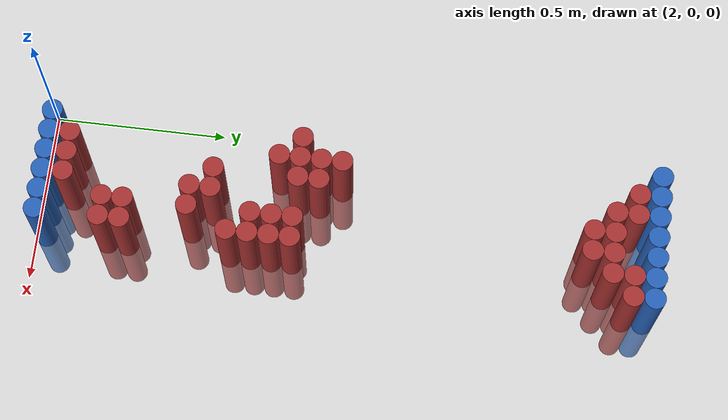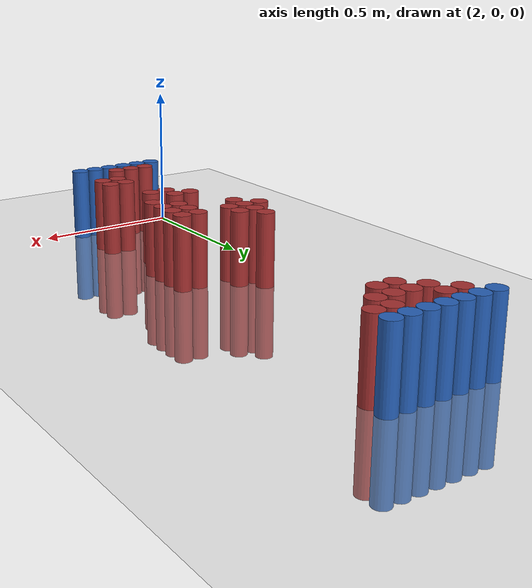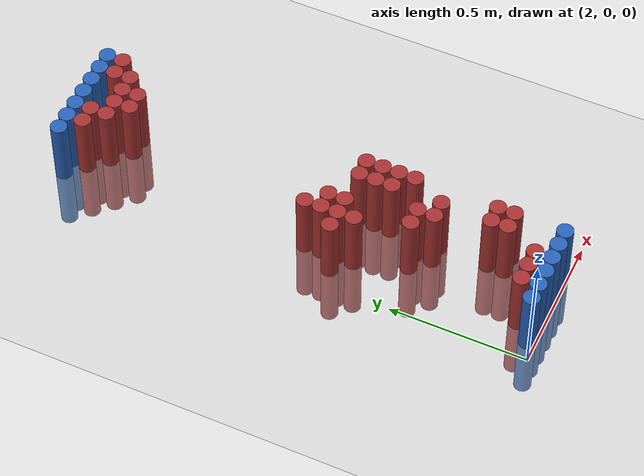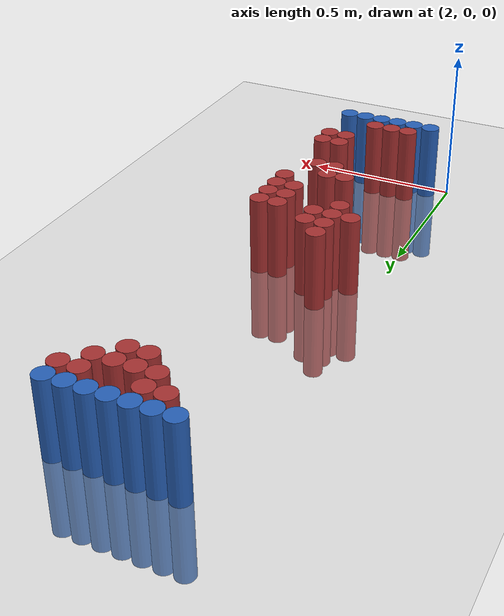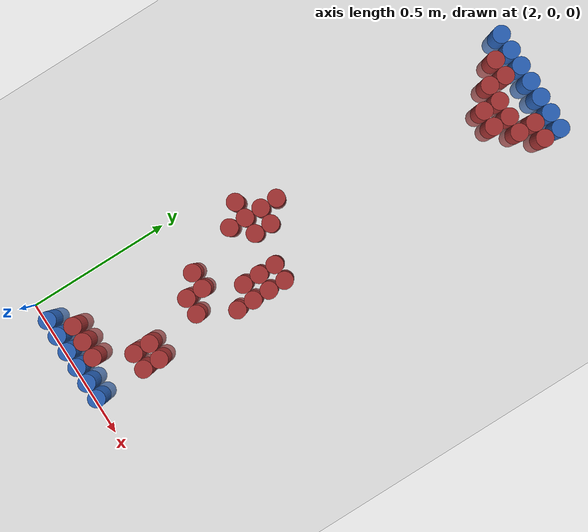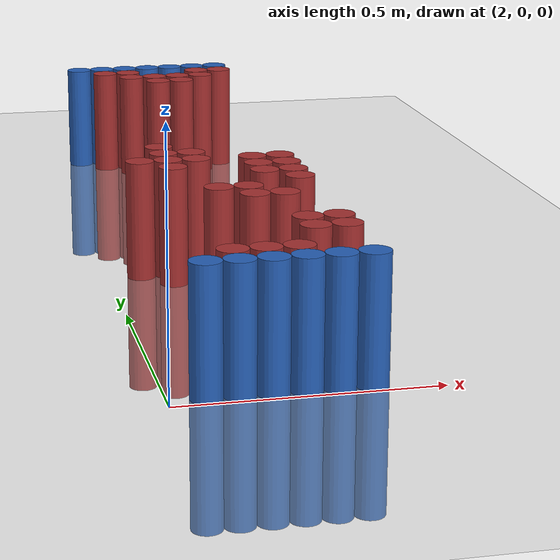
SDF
<sdf version="1.6">
 <world name="default">
  <model name="ground_plane">
   <static>1</static>
   <link name="link">
    <collision name="collision">
     <geometry><plane><normal>0 0 1</normal><size>100 100</size></plane></geometry>
     <surface><friction><ode><mu>100</mu><mu2>50</mu2></ode></friction></surface>
    </collision>
    <visual name="visual">
     <cast_shadows>0</cast_shadows>
     <geometry><plane><normal>0 0 1</normal><size>100 100</size></plane></geometry>
     <material>
      <script><uri>file://media/materials/scripts/gazebo.material</uri><name>Gazebo/Grey</name></script>
     </material>
    </visual>
   </link>
  </model>
  <model name="unit_cylinder_95">
   <static>1</static>
   <pose>2.070000 1.770000 0.000000 0.000000 0.000000 0.000000</pose>
   <link name="link">
    <inertial>
     <mass>1</mass>
     <inertia><ixx>0.145833</ixx><ixy>0</ixy><ixz>0</ixz><iyy>0.145833</iyy><iyz>0</iyz><izz>0.125</izz></inertia>
    </inertial>
    <collision name="collision">
     <geometry><cylinder><radius>0.030000</radius><length>0.5</length></cylinder></geometry>
    </collision>
    <visual name="visual">
     <geometry><cylinder><radius>0.030000</radius><length>0.5</length></cylinder></geometry>
     <material>
      <ambient>0.152000 0.379000 0.720000 1</ambient>
      <diffuse>0.152000 0.379000 0.720000 1</diffuse>
     </material>
     <material>
      <script><name>Gazebo/Grey</name><uri>file://media/materials/scripts/gazebo.material</uri></script>
     </material>
    </visual>
   </link>
  </model>
  <model name="unit_cylinder_96">
   <static>1</static>
   <pose>2.130000 1.770000 0.000000 0.000000 0.000000 0.000000</pose>
   <link name="link">
    <inertial>
     <mass>1</mass>
     <inertia><ixx>0.145833</ixx><ixy>0</ixy><ixz>0</ixz><iyy>0.145833</iyy><iyz>0</iyz><izz>0.125</izz></inertia>
    </inertial>
    <collision name="collision">
     <geometry><cylinder><radius>0.030000</radius><length>0.5</length></cylinder></geometry>
    </collision>
    <visual name="visual">
     <geometry><cylinder><radius>0.030000</radius><length>0.5</length></cylinder></geometry>
     <material>
      <ambient>0.152000 0.379000 0.720000 1</ambient>
      <diffuse>0.152000 0.379000 0.720000 1</diffuse>
     </material>
     <material>
      <script><name>Gazebo/Grey</name><uri>file://media/materials/scripts/gazebo.material</uri></script>
     </material>
    </visual>
   </link>
  </model>
  <model name="unit_cylinder_97">
   <static>1</static>
   <pose>2.190000 1.770000 0.000000 0.000000 0.000000 0.000000</pose>
   <link name="link">
    <inertial>
     <mass>1</mass>
     <inertia><ixx>0.145833</ixx><ixy>0</ixy><ixz>0</ixz><iyy>0.145833</iyy><iyz>0</iyz><izz>0.125</izz></inertia>
    </inertial>
    <collision name="collision">
     <geometry><cylinder><radius>0.030000</radius><length>0.5</length></cylinder></geometry>
    </collision>
    <visual name="visual">
     <geometry><cylinder><radius>0.030000</radius><length>0.5</length></cylinder></geometry>
     <material>
      <ambient>0.152000 0.379000 0.720000 1</ambient>
      <diffuse>0.152000 0.379000 0.720000 1</diffuse>
     </material>
     <material>
      <script><name>Gazebo/Grey</name><uri>file://media/materials/scripts/gazebo.material</uri></script>
     </material>
    </visual>
   </link>
  </model>
  <model name="unit_cylinder_98">
   <static>1</static>
   <pose>2.250000 1.770000 0.000000 0.000000 0.000000 0.000000</pose>
   <link name="link">
    <inertial>
     <mass>1</mass>
     <inertia><ixx>0.145833</ixx><ixy>0</ixy><ixz>0</ixz><iyy>0.145833</iyy><iyz>0</iyz><izz>0.125</izz></inertia>
    </inertial>
    <collision name="collision">
     <geometry><cylinder><radius>0.030000</radius><length>0.5</length></cylinder></geometry>
    </collision>
    <visual name="visual">
     <geometry><cylinder><radius>0.030000</radius><length>0.5</length></cylinder></geometry>
     <material>
      <ambient>0.152000 0.379000 0.720000 1</ambient>
      <diffuse>0.152000 0.379000 0.720000 1</diffuse>
     </material>
     <material>
      <script><name>Gazebo/Grey</name><uri>file://media/materials/scripts/gazebo.material</uri></script>
     </material>
    </visual>
   </link>
  </model>
  <model name="unit_cylinder_99">
   <static>1</static>
   <pose>2.310000 1.770000 0.000000 0.000000 0.000000 0.000000</pose>
   <link name="link">
    <inertial>
     <mass>1</mass>
     <inertia><ixx>0.145833</ixx><ixy>0</ixy><ixz>0</ixz><iyy>0.145833</iyy><iyz>0</iyz><izz>0.125</izz></inertia>
    </inertial>
    <collision name="collision">
     <geometry><cylinder><radius>0.030000</radius><length>0.5</length></cylinder></geometry>
    </collision>
    <visual name="visual">
     <geometry><cylinder><radius>0.030000</radius><length>0.5</length></cylinder></geometry>
     <material>
      <ambient>0.152000 0.379000 0.720000 1</ambient>
      <diffuse>0.152000 0.379000 0.720000 1</diffuse>
     </material>
     <material>
      <script><name>Gazebo/Grey</name><uri>file://media/materials/scripts/gazebo.material</uri></script>
     </material>
    </visual>
   </link>
  </model>
  <model name="unit_cylinder_100">
   <static>1</static>
   <pose>2.370000 1.770000 0.000000 0.000000 0.000000 0.000000</pose>
   <link name="link">
    <inertial>
     <mass>1</mass>
     <inertia><ixx>0.145833</ixx><ixy>0</ixy><ixz>0</ixz><iyy>0.145833</iyy><iyz>0</iyz><izz>0.125</izz></inertia>
    </inertial>
    <collision name="collision">
     <geometry><cylinder><radius>0.030000</radius><length>0.5</length></cylinder></geometry>
    </collision>
    <visual name="visual">
     <geometry><cylinder><radius>0.030000</radius><length>0.5</length></cylinder></geometry>
     <material>
      <ambient>0.152000 0.379000 0.720000 1</ambient>
      <diffuse>0.152000 0.379000 0.720000 1</diffuse>
     </material>
     <material>
      <script><name>Gazebo/Grey</name><uri>file://media/materials/scripts/gazebo.material</uri></script>
     </material>
    </visual>
   </link>
  </model>
  <model name="unit_cylinder_101">
   <static>1</static>
   <pose>2.430000 1.770000 0.000000 0.000000 0.000000 0.000000</pose>
   <link name="link">
    <inertial>
     <mass>1</mass>
     <inertia><ixx>0.145833</ixx><ixy>0</ixy><ixz>0</ixz><iyy>0.145833</iyy><iyz>0</iyz><izz>0.125</izz></inertia>
    </inertial>
    <collision name="collision">
     <geometry><cylinder><radius>0.030000</radius><length>0.5</length></cylinder></geometry>
    </collision>
    <visual name="visual">
     <geometry><cylinder><radius>0.030000</radius><length>0.5</length></cylinder></geometry>
     <material>
      <ambient>0.152000 0.379000 0.720000 1</ambient>
      <diffuse>0.152000 0.379000 0.720000 1</diffuse>
     </material>
     <material>
      <script><name>Gazebo/Grey</name><uri>file://media/materials/scripts/gazebo.material</uri></script>
     </material>
    </visual>
   </link>
  </model>
  <model name="unit_cylinder_125">
   <static>1</static>
   <pose>2.130000 1.710000 0.000000 0.000000 0.000000 0.000000</pose>
   <link name="link">
    <inertial>
     <mass>1</mass>
     <inertia><ixx>0.145833</ixx><ixy>0</ixy><ixz>0</ixz><iyy>0.145833</iyy><iyz>0</iyz><izz>0.125</izz></inertia>
    </inertial>
    <collision name="collision">
     <geometry><cylinder><radius>0.030000</radius><length>0.5</length></cylinder></geometry>
    </collision>
    <visual name="visual">
     <geometry><cylinder><radius>0.030000</radius><length>0.5</length></cylinder></geometry>
     <material>
      <ambient>0.648000 0.192000 0.192000 1</ambient>
      <diffuse>0.648000 0.192000 0.192000 1</diffuse>
     </material>
     <material>
      <script><name>Gazebo/Grey</name><uri>file://media/materials/scripts/gazebo.material</uri></script>
     </material>
    </visual>
   </link>
  </model>
  <model name="unit_cylinder_126">
   <static>1</static>
   <pose>2.190000 1.710000 0.000000 0.000000 0.000000 0.000000</pose>
   <link name="link">
    <inertial>
     <mass>1</mass>
     <inertia><ixx>0.145833</ixx><ixy>0</ixy><ixz>0</ixz><iyy>0.145833</iyy><iyz>0</iyz><izz>0.125</izz></inertia>
    </inertial>
    <collision name="collision">
     <geometry><cylinder><radius>0.030000</radius><length>0.5</length></cylinder></geometry>
    </collision>
    <visual name="visual">
     <geometry><cylinder><radius>0.030000</radius><length>0.5</length></cylinder></geometry>
     <material>
      <ambient>0.648000 0.192000 0.192000 1</ambient>
      <diffuse>0.648000 0.192000 0.192000 1</diffuse>
     </material>
     <material>
      <script><name>Gazebo/Grey</name><uri>file://media/materials/scripts/gazebo.material</uri></script>
     </material>
    </visual>
   </link>
  </model>
  <model name="unit_cylinder_127">
   <static>1</static>
   <pose>2.370000 1.710000 0.000000 0.000000 0.000000 0.000000</pose>
   <link name="link">
    <inertial>
     <mass>1</mass>
     <inertia><ixx>0.145833</ixx><ixy>0</ixy><ixz>0</ixz><iyy>0.145833</iyy><iyz>0</iyz><izz>0.125</izz></inertia>
    </inertial>
    <collision name="collision">
     <geometry><cylinder><radius>0.030000</radius><length>0.5</length></cylinder></geometry>
    </collision>
    <visual name="visual">
     <geometry><cylinder><radius>0.030000</radius><length>0.5</length></cylinder></geometry>
     <material>
      <ambient>0.648000 0.192000 0.192000 1</ambient>
      <diffuse>0.648000 0.192000 0.192000 1</diffuse>
     </material>
     <material>
      <script><name>Gazebo/Grey</name><uri>file://media/materials/scripts/gazebo.material</uri></script>
     </material>
    </visual>
   </link>
  </model>
  <model name="unit_cylinder_128">
   <static>1</static>
   <pose>2.430000 1.710000 0.000000 0.000000 0.000000 0.000000</pose>
   <link name="link">
    <inertial>
     <mass>1</mass>
     <inertia><ixx>0.145833</ixx><ixy>0</ixy><ixz>0</ixz><iyy>0.145833</iyy><iyz>0</iyz><izz>0.125</izz></inertia>
    </inertial>
    <collision name="collision">
     <geometry><cylinder><radius>0.030000</radius><length>0.5</length></cylinder></geometry>
    </collision>
    <visual name="visual">
     <geometry><cylinder><radius>0.030000</radius><length>0.5</length></cylinder></geometry>
     <material>
      <ambient>0.648000 0.192000 0.192000 1</ambient>
      <diffuse>0.648000 0.192000 0.192000 1</diffuse>
     </material>
     <material>
      <script><name>Gazebo/Grey</name><uri>file://media/materials/scripts/gazebo.material</uri></script>
     </material>
    </visual>
   </link>
  </model>
  <model name="unit_cylinder_139">
   <static>1</static>
   <pose>2.190000 1.650000 0.000000 0.000000 0.000000 0.000000</pose>
   <link name="link">
    <inertial>
     <mass>1</mass>
     <inertia><ixx>0.145833</ixx><ixy>0</ixy><ixz>0</ixz><iyy>0.145833</iyy><iyz>0</iyz><izz>0.125</izz></inertia>
    </inertial>
    <collision name="collision">
     <geometry><cylinder><radius>0.030000</radius><length>0.5</length></cylinder></geometry>
    </collision>
    <visual name="visual">
     <geometry><cylinder><radius>0.030000</radius><length>0.5</length></cylinder></geometry>
     <material>
      <ambient>0.648000 0.192000 0.192000 1</ambient>
      <diffuse>0.648000 0.192000 0.192000 1</diffuse>
     </material>
     <material>
      <script><name>Gazebo/Grey</name><uri>file://media/materials/scripts/gazebo.material</uri></script>
     </material>
    </visual>
   </link>
  </model>
  <model name="unit_cylinder_140">
   <static>1</static>
   <pose>2.250000 1.650000 0.000000 0.000000 0.000000 0.000000</pose>
   <link name="link">
    <inertial>
     <mass>1</mass>
     <inertia><ixx>0.145833</ixx><ixy>0</ixy><ixz>0</ixz><iyy>0.145833</iyy><iyz>0</iyz><izz>0.125</izz></inertia>
    </inertial>
    <collision name="collision">
     <geometry><cylinder><radius>0.030000</radius><length>0.5</length></cylinder></geometry>
    </collision>
    <visual name="visual">
     <geometry><cylinder><radius>0.030000</radius><length>0.5</length></cylinder></geometry>
     <material>
      <ambient>0.648000 0.192000 0.192000 1</ambient>
      <diffuse>0.648000 0.192000 0.192000 1</diffuse>
     </material>
     <material>
      <script><name>Gazebo/Grey</name><uri>file://media/materials/scripts/gazebo.material</uri></script>
     </material>
    </visual>
   </link>
  </model>
  <model name="unit_cylinder_141">
   <static>1</static>
   <pose>2.310000 1.650000 0.000000 0.000000 0.000000 0.000000</pose>
   <link name="link">
    <inertial>
     <mass>1</mass>
     <inertia><ixx>0.145833</ixx><ixy>0</ixy><ixz>0</ixz><iyy>0.145833</iyy><iyz>0</iyz><izz>0.125</izz></inertia>
    </inertial>
    <collision name="collision">
     <geometry><cylinder><radius>0.030000</radius><length>0.5</length></cylinder></geometry>
    </collision>
    <visual name="visual">
     <geometry><cylinder><radius>0.030000</radius><length>0.5</length></cylinder></geometry>
     <material>
      <ambient>0.648000 0.192000 0.192000 1</ambient>
      <diffuse>0.648000 0.192000 0.192000 1</diffuse>
     </material>
     <material>
      <script><name>Gazebo/Grey</name><uri>file://media/materials/scripts/gazebo.material</uri></script>
     </material>
    </visual>
   </link>
  </model>
  <model name="unit_cylinder_142">
   <static>1</static>
   <pose>2.370000 1.650000 0.000000 0.000000 0.000000 0.000000</pose>
   <link name="link">
    <inertial>
     <mass>1</mass>
     <inertia><ixx>0.145833</ixx><ixy>0</ixy><ixz>0</ixz><iyy>0.145833</iyy><iyz>0</iyz><izz>0.125</izz></inertia>
    </inertial>
    <collision name="collision">
     <geometry><cylinder><radius>0.030000</radius><length>0.5</length></cylinder></geometry>
    </collision>
    <visual name="visual">
     <geometry><cylinder><radius>0.030000</radius><length>0.5</length></cylinder></geometry>
     <material>
      <ambient>0.648000 0.192000 0.192000 1</ambient>
      <diffuse>0.648000 0.192000 0.192000 1</diffuse>
     </material>
     <material>
      <script><name>Gazebo/Grey</name><uri>file://media/materials/scripts/gazebo.material</uri></script>
     </material>
    </visual>
   </link>
  </model>
  <model name="unit_cylinder_156">
   <static>1</static>
   <pose>2.250000 1.590000 0.000000 0.000000 0.000000 0.000000</pose>
   <link name="link">
    <inertial>
     <mass>1</mass>
     <inertia><ixx>0.145833</ixx><ixy>0</ixy><ixz>0</ixz><iyy>0.145833</iyy><iyz>0</iyz><izz>0.125</izz></inertia>
    </inertial>
    <collision name="collision">
     <geometry><cylinder><radius>0.030000</radius><length>0.5</length></cylinder></geometry>
    </collision>
    <visual name="visual">
     <geometry><cylinder><radius>0.030000</radius><length>0.5</length></cylinder></geometry>
     <material>
      <ambient>0.648000 0.192000 0.192000 1</ambient>
      <diffuse>0.648000 0.192000 0.192000 1</diffuse>
     </material>
     <material>
      <script><name>Gazebo/Grey</name><uri>file://media/materials/scripts/gazebo.material</uri></script>
     </material>
    </visual>
   </link>
  </model>
  <model name="unit_cylinder_157">
   <static>1</static>
   <pose>2.310000 1.590000 0.000000 0.000000 0.000000 0.000000</pose>
   <link name="link">
    <inertial>
     <mass>1</mass>
     <inertia><ixx>0.145833</ixx><ixy>0</ixy><ixz>0</ixz><iyy>0.145833</iyy><iyz>0</iyz><izz>0.125</izz></inertia>
    </inertial>
    <collision name="collision">
     <geometry><cylinder><radius>0.030000</radius><length>0.5</length></cylinder></geometry>
    </collision>
    <visual name="visual">
     <geometry><cylinder><radius>0.030000</radius><length>0.5</length></cylinder></geometry>
     <material>
      <ambient>0.648000 0.192000 0.192000 1</ambient>
      <diffuse>0.648000 0.192000 0.192000 1</diffuse>
     </material>
     <material>
      <script><name>Gazebo/Grey</name><uri>file://media/materials/scripts/gazebo.material</uri></script>
     </material>
    </visual>
   </link>
  </model>
  <model name="unit_cylinder_191">
   <static>1</static>
   <pose>2.130000 0.870000 0.000000 0.000000 0.000000 0.000000</pose>
   <link name="link">
    <inertial>
     <mass>1</mass>
     <inertia><ixx>0.145833</ixx><ixy>0</ixy><ixz>0</ixz><iyy>0.145833</iyy><iyz>0</iyz><izz>0.125</izz></inertia>
    </inertial>
    <collision name="collision">
     <geometry><cylinder><radius>0.030000</radius><length>0.5</length></cylinder></geometry>
    </collision>
    <visual name="visual">
     <geometry><cylinder><radius>0.030000</radius><length>0.5</length></cylinder></geometry>
     <material>
      <ambient>0.648000 0.192000 0.192000 1</ambient>
      <diffuse>0.648000 0.192000 0.192000 1</diffuse>
     </material>
     <material>
      <script><name>Gazebo/Grey</name><uri>file://media/materials/scripts/gazebo.material</uri></script>
     </material>
    </visual>
   </link>
  </model>
  <model name="unit_cylinder_198">
   <static>1</static>
   <pose>2.130000 0.810000 0.000000 0.000000 0.000000 0.000000</pose>
   <link name="link">
    <inertial>
     <mass>1</mass>
     <inertia><ixx>0.145833</ixx><ixy>0</ixy><ixz>0</ixz><iyy>0.145833</iyy><iyz>0</iyz><izz>0.125</izz></inertia>
    </inertial>
    <collision name="collision">
     <geometry><cylinder><radius>0.030000</radius><length>0.5</length></cylinder></geometry>
    </collision>
    <visual name="visual">
     <geometry><cylinder><radius>0.030000</radius><length>0.5</length></cylinder></geometry>
     <material>
      <ambient>0.648000 0.192000 0.192000 1</ambient>
      <diffuse>0.648000 0.192000 0.192000 1</diffuse>
     </material>
     <material>
      <script><name>Gazebo/Grey</name><uri>file://media/materials/scripts/gazebo.material</uri></script>
     </material>
    </visual>
   </link>
  </model>
  <model name="unit_cylinder_199">
   <static>1</static>
   <pose>2.190000 0.810000 0.000000 0.000000 0.000000 0.000000</pose>
   <link name="link">
    <inertial>
     <mass>1</mass>
     <inertia><ixx>0.145833</ixx><ixy>0</ixy><ixz>0</ixz><iyy>0.145833</iyy><iyz>0</iyz><izz>0.125</izz></inertia>
    </inertial>
    <collision name="collision">
     <geometry><cylinder><radius>0.030000</radius><length>0.5</length></cylinder></geometry>
    </collision>
    <visual name="visual">
     <geometry><cylinder><radius>0.030000</radius><length>0.5</length></cylinder></geometry>
     <material>
      <ambient>0.648000 0.192000 0.192000 1</ambient>
      <diffuse>0.648000 0.192000 0.192000 1</diffuse>
     </material>
     <material>
      <script><name>Gazebo/Grey</name><uri>file://media/materials/scripts/gazebo.material</uri></script>
     </material>
    </visual>
   </link>
  </model>
  <model name="unit_cylinder_206">
   <static>1</static>
   <pose>2.070000 0.750000 0.000000 0.000000 0.000000 0.000000</pose>
   <link name="link">
    <inertial>
     <mass>1</mass>
     <inertia><ixx>0.145833</ixx><ixy>0</ixy><ixz>0</ixz><iyy>0.145833</iyy><iyz>0</iyz><izz>0.125</izz></inertia>
    </inertial>
    <collision name="collision">
     <geometry><cylinder><radius>0.030000</radius><length>0.5</length></cylinder></geometry>
    </collision>
    <visual name="visual">
     <geometry><cylinder><radius>0.030000</radius><length>0.5</length></cylinder></geometry>
     <material>
      <ambient>0.648000 0.192000 0.192000 1</ambient>
      <diffuse>0.648000 0.192000 0.192000 1</diffuse>
     </material>
     <material>
      <script><name>Gazebo/Grey</name><uri>file://media/materials/scripts/gazebo.material</uri></script>
     </material>
    </visual>
   </link>
  </model>
  <model name="unit_cylinder_207">
   <static>1</static>
   <pose>2.130000 0.750000 0.000000 0.000000 0.000000 0.000000</pose>
   <link name="link">
    <inertial>
     <mass>1</mass>
     <inertia><ixx>0.145833</ixx><ixy>0</ixy><ixz>0</ixz><iyy>0.145833</iyy><iyz>0</iyz><izz>0.125</izz></inertia>
    </inertial>
    <collision name="collision">
     <geometry><cylinder><radius>0.030000</radius><length>0.5</length></cylinder></geometry>
    </collision>
    <visual name="visual">
     <geometry><cylinder><radius>0.030000</radius><length>0.5</length></cylinder></geometry>
     <material>
      <ambient>0.648000 0.192000 0.192000 1</ambient>
      <diffuse>0.648000 0.192000 0.192000 1</diffuse>
     </material>
     <material>
      <script><name>Gazebo/Grey</name><uri>file://media/materials/scripts/gazebo.material</uri></script>
     </material>
    </visual>
   </link>
  </model>
  <model name="unit_cylinder_208">
   <static>1</static>
   <pose>2.190000 0.750000 0.000000 0.000000 0.000000 0.000000</pose>
   <link name="link">
    <inertial>
     <mass>1</mass>
     <inertia><ixx>0.145833</ixx><ixy>0</ixy><ixz>0</ixz><iyy>0.145833</iyy><iyz>0</iyz><izz>0.125</izz></inertia>
    </inertial>
    <collision name="collision">
     <geometry><cylinder><radius>0.030000</radius><length>0.5</length></cylinder></geometry>
    </collision>
    <visual name="visual">
     <geometry><cylinder><radius>0.030000</radius><length>0.5</length></cylinder></geometry>
     <material>
      <ambient>0.648000 0.192000 0.192000 1</ambient>
      <diffuse>0.648000 0.192000 0.192000 1</diffuse>
     </material>
     <material>
      <script><name>Gazebo/Grey</name><uri>file://media/materials/scripts/gazebo.material</uri></script>
     </material>
    </visual>
   </link>
  </model>
  <model name="unit_cylinder_209">
   <static>1</static>
   <pose>2.310000 0.750000 0.000000 0.000000 0.000000 0.000000</pose>
   <link name="link">
    <inertial>
     <mass>1</mass>
     <inertia><ixx>0.145833</ixx><ixy>0</ixy><ixz>0</ixz><iyy>0.145833</iyy><iyz>0</iyz><izz>0.125</izz></inertia>
    </inertial>
    <collision name="collision">
     <geometry><cylinder><radius>0.030000</radius><length>0.5</length></cylinder></geometry>
    </collision>
    <visual name="visual">
     <geometry><cylinder><radius>0.030000</radius><length>0.5</length></cylinder></geometry>
     <material>
      <ambient>0.648000 0.192000 0.192000 1</ambient>
      <diffuse>0.648000 0.192000 0.192000 1</diffuse>
     </material>
     <material>
      <script><name>Gazebo/Grey</name><uri>file://media/materials/scripts/gazebo.material</uri></script>
     </material>
    </visual>
   </link>
  </model>
  <model name="unit_cylinder_210">
   <static>1</static>
   <pose>2.370000 0.750000 0.000000 0.000000 0.000000 0.000000</pose>
   <link name="link">
    <inertial>
     <mass>1</mass>
     <inertia><ixx>0.145833</ixx><ixy>0</ixy><ixz>0</ixz><iyy>0.145833</iyy><iyz>0</iyz><izz>0.125</izz></inertia>
    </inertial>
    <collision name="collision">
     <geometry><cylinder><radius>0.030000</radius><length>0.5</length></cylinder></geometry>
    </collision>
    <visual name="visual">
     <geometry><cylinder><radius>0.030000</radius><length>0.5</length></cylinder></geometry>
     <material>
      <ambient>0.648000 0.192000 0.192000 1</ambient>
      <diffuse>0.648000 0.192000 0.192000 1</diffuse>
     </material>
     <material>
      <script><name>Gazebo/Grey</name><uri>file://media/materials/scripts/gazebo.material</uri></script>
     </material>
    </visual>
   </link>
  </model>
  <model name="unit_cylinder_214">
   <static>1</static>
   <pose>2.130000 0.690000 0.000000 0.000000 0.000000 0.000000</pose>
   <link name="link">
    <inertial>
     <mass>1</mass>
     <inertia><ixx>0.145833</ixx><ixy>0</ixy><ixz>0</ixz><iyy>0.145833</iyy><iyz>0</iyz><izz>0.125</izz></inertia>
    </inertial>
    <collision name="collision">
     <geometry><cylinder><radius>0.030000</radius><length>0.5</length></cylinder></geometry>
    </collision>
    <visual name="visual">
     <geometry><cylinder><radius>0.030000</radius><length>0.5</length></cylinder></geometry>
     <material>
      <ambient>0.648000 0.192000 0.192000 1</ambient>
      <diffuse>0.648000 0.192000 0.192000 1</diffuse>
     </material>
     <material>
      <script><name>Gazebo/Grey</name><uri>file://media/materials/scripts/gazebo.material</uri></script>
     </material>
    </visual>
   </link>
  </model>
  <model name="unit_cylinder_215">
   <static>1</static>
   <pose>2.310000 0.690000 0.000000 0.000000 0.000000 0.000000</pose>
   <link name="link">
    <inertial>
     <mass>1</mass>
     <inertia><ixx>0.145833</ixx><ixy>0</ixy><ixz>0</ixz><iyy>0.145833</iyy><iyz>0</iyz><izz>0.125</izz></inertia>
    </inertial>
    <collision name="collision">
     <geometry><cylinder><radius>0.030000</radius><length>0.5</length></cylinder></geometry>
    </collision>
    <visual name="visual">
     <geometry><cylinder><radius>0.030000</radius><length>0.5</length></cylinder></geometry>
     <material>
      <ambient>0.648000 0.192000 0.192000 1</ambient>
      <diffuse>0.648000 0.192000 0.192000 1</diffuse>
     </material>
     <material>
      <script><name>Gazebo/Grey</name><uri>file://media/materials/scripts/gazebo.material</uri></script>
     </material>
    </visual>
   </link>
  </model>
  <model name="unit_cylinder_216">
   <static>1</static>
   <pose>2.370000 0.690000 0.000000 0.000000 0.000000 0.000000</pose>
   <link name="link">
    <inertial>
     <mass>1</mass>
     <inertia><ixx>0.145833</ixx><ixy>0</ixy><ixz>0</ixz><iyy>0.145833</iyy><iyz>0</iyz><izz>0.125</izz></inertia>
    </inertial>
    <collision name="collision">
     <geometry><cylinder><radius>0.030000</radius><length>0.5</length></cylinder></geometry>
    </collision>
    <visual name="visual">
     <geometry><cylinder><radius>0.030000</radius><length>0.5</length></cylinder></geometry>
     <material>
      <ambient>0.648000 0.192000 0.192000 1</ambient>
      <diffuse>0.648000 0.192000 0.192000 1</diffuse>
     </material>
     <material>
      <script><name>Gazebo/Grey</name><uri>file://media/materials/scripts/gazebo.material</uri></script>
     </material>
    </visual>
   </link>
  </model>
  <model name="unit_cylinder_217">
   <static>1</static>
   <pose>2.310000 0.630000 0.000000 0.000000 0.000000 0.000000</pose>
   <link name="link">
    <inertial>
     <mass>1</mass>
     <inertia><ixx>0.145833</ixx><ixy>0</ixy><ixz>0</ixz><iyy>0.145833</iyy><iyz>0</iyz><izz>0.125</izz></inertia>
    </inertial>
    <collision name="collision">
     <geometry><cylinder><radius>0.030000</radius><length>0.5</length></cylinder></geometry>
    </collision>
    <visual name="visual">
     <geometry><cylinder><radius>0.030000</radius><length>0.5</length></cylinder></geometry>
     <material>
      <ambient>0.648000 0.192000 0.192000 1</ambient>
      <diffuse>0.648000 0.192000 0.192000 1</diffuse>
     </material>
     <material>
      <script><name>Gazebo/Grey</name><uri>file://media/materials/scripts/gazebo.material</uri></script>
     </material>
    </visual>
   </link>
  </model>
  <model name="unit_cylinder_218">
   <static>1</static>
   <pose>2.370000 0.630000 0.000000 0.000000 0.000000 0.000000</pose>
   <link name="link">
    <inertial>
     <mass>1</mass>
     <inertia><ixx>0.145833</ixx><ixy>0</ixy><ixz>0</ixz><iyy>0.145833</iyy><iyz>0</iyz><izz>0.125</izz></inertia>
    </inertial>
    <collision name="collision">
     <geometry><cylinder><radius>0.030000</radius><length>0.5</length></cylinder></geometry>
    </collision>
    <visual name="visual">
     <geometry><cylinder><radius>0.030000</radius><length>0.5</length></cylinder></geometry>
     <material>
      <ambient>0.648000 0.192000 0.192000 1</ambient>
      <diffuse>0.648000 0.192000 0.192000 1</diffuse>
     </material>
     <material>
      <script><name>Gazebo/Grey</name><uri>file://media/materials/scripts/gazebo.material</uri></script>
     </material>
    </visual>
   </link>
  </model>
  <model name="unit_cylinder_220">
   <static>1</static>
   <pose>2.370000 0.570000 0.000000 0.000000 0.000000 0.000000</pose>
   <link name="link">
    <inertial>
     <mass>1</mass>
     <inertia><ixx>0.145833</ixx><ixy>0</ixy><ixz>0</ixz><iyy>0.145833</iyy><iyz>0</iyz><izz>0.125</izz></inertia>
    </inertial>
    <collision name="collision">
     <geometry><cylinder><radius>0.030000</radius><length>0.5</length></cylinder></geometry>
    </collision>
    <visual name="visual">
     <geometry><cylinder><radius>0.030000</radius><length>0.5</length></cylinder></geometry>
     <material>
      <ambient>0.648000 0.192000 0.192000 1</ambient>
      <diffuse>0.648000 0.192000 0.192000 1</diffuse>
     </material>
     <material>
      <script><name>Gazebo/Grey</name><uri>file://media/materials/scripts/gazebo.material</uri></script>
     </material>
    </visual>
   </link>
  </model>
  <model name="unit_cylinder_229">
   <static>1</static>
   <pose>2.190000 0.510000 0.000000 0.000000 0.000000 0.000000</pose>
   <link name="link">
    <inertial>
     <mass>1</mass>
     <inertia><ixx>0.145833</ixx><ixy>0</ixy><ixz>0</ixz><iyy>0.145833</iyy><iyz>0</iyz><izz>0.125</izz></inertia>
    </inertial>
    <collision name="collision">
     <geometry><cylinder><radius>0.030000</radius><length>0.5</length></cylinder></geometry>
    </collision>
    <visual name="visual">
     <geometry><cylinder><radius>0.030000</radius><length>0.5</length></cylinder></geometry>
     <material>
      <ambient>0.648000 0.192000 0.192000 1</ambient>
      <diffuse>0.648000 0.192000 0.192000 1</diffuse>
     </material>
     <material>
      <script><name>Gazebo/Grey</name><uri>file://media/materials/scripts/gazebo.material</uri></script>
     </material>
    </visual>
   </link>
  </model>
  <model name="unit_cylinder_230">
   <static>1</static>
   <pose>2.250000 0.510000 0.000000 0.000000 0.000000 0.000000</pose>
   <link name="link">
    <inertial>
     <mass>1</mass>
     <inertia><ixx>0.145833</ixx><ixy>0</ixy><ixz>0</ixz><iyy>0.145833</iyy><iyz>0</iyz><izz>0.125</izz></inertia>
    </inertial>
    <collision name="collision">
     <geometry><cylinder><radius>0.030000</radius><length>0.5</length></cylinder></geometry>
    </collision>
    <visual name="visual">
     <geometry><cylinder><radius>0.030000</radius><length>0.5</length></cylinder></geometry>
     <material>
      <ambient>0.648000 0.192000 0.192000 1</ambient>
      <diffuse>0.648000 0.192000 0.192000 1</diffuse>
     </material>
     <material>
      <script><name>Gazebo/Grey</name><uri>file://media/materials/scripts/gazebo.material</uri></script>
     </material>
    </visual>
   </link>
  </model>
  <model name="unit_cylinder_240">
   <static>1</static>
   <pose>2.250000 0.450000 0.000000 0.000000 0.000000 0.000000</pose>
   <link name="link">
    <inertial>
     <mass>1</mass>
     <inertia><ixx>0.145833</ixx><ixy>0</ixy><ixz>0</ixz><iyy>0.145833</iyy><iyz>0</iyz><izz>0.125</izz></inertia>
    </inertial>
    <collision name="collision">
     <geometry><cylinder><radius>0.030000</radius><length>0.5</length></cylinder></geometry>
    </collision>
    <visual name="visual">
     <geometry><cylinder><radius>0.030000</radius><length>0.5</length></cylinder></geometry>
     <material>
      <ambient>0.648000 0.192000 0.192000 1</ambient>
      <diffuse>0.648000 0.192000 0.192000 1</diffuse>
     </material>
     <material>
      <script><name>Gazebo/Grey</name><uri>file://media/materials/scripts/gazebo.material</uri></script>
     </material>
    </visual>
   </link>
  </model>
  <model name="unit_cylinder_241">
   <static>1</static>
   <pose>2.310000 0.450000 0.000000 0.000000 0.000000 0.000000</pose>
   <link name="link">
    <inertial>
     <mass>1</mass>
     <inertia><ixx>0.145833</ixx><ixy>0</ixy><ixz>0</ixz><iyy>0.145833</iyy><iyz>0</iyz><izz>0.125</izz></inertia>
    </inertial>
    <collision name="collision">
     <geometry><cylinder><radius>0.030000</radius><length>0.5</length></cylinder></geometry>
    </collision>
    <visual name="visual">
     <geometry><cylinder><radius>0.030000</radius><length>0.5</length></cylinder></geometry>
     <material>
      <ambient>0.648000 0.192000 0.192000 1</ambient>
      <diffuse>0.648000 0.192000 0.192000 1</diffuse>
     </material>
     <material>
      <script><name>Gazebo/Grey</name><uri>file://media/materials/scripts/gazebo.material</uri></script>
     </material>
    </visual>
   </link>
  </model>
  <model name="unit_cylinder_263">
   <static>1</static>
   <pose>2.310000 0.270000 0.000000 0.000000 0.000000 0.000000</pose>
   <link name="link">
    <inertial>
     <mass>1</mass>
     <inertia><ixx>0.145833</ixx><ixy>0</ixy><ixz>0</ixz><iyy>0.145833</iyy><iyz>0</iyz><izz>0.125</izz></inertia>
    </inertial>
    <collision name="collision">
     <geometry><cylinder><radius>0.030000</radius><length>0.5</length></cylinder></geometry>
    </collision>
    <visual name="visual">
     <geometry><cylinder><radius>0.030000</radius><length>0.5</length></cylinder></geometry>
     <material>
      <ambient>0.648000 0.192000 0.192000 1</ambient>
      <diffuse>0.648000 0.192000 0.192000 1</diffuse>
     </material>
     <material>
      <script><name>Gazebo/Grey</name><uri>file://media/materials/scripts/gazebo.material</uri></script>
     </material>
    </visual>
   </link>
  </model>
  <model name="unit_cylinder_264">
   <static>1</static>
   <pose>2.370000 0.270000 0.000000 0.000000 0.000000 0.000000</pose>
   <link name="link">
    <inertial>
     <mass>1</mass>
     <inertia><ixx>0.145833</ixx><ixy>0</ixy><ixz>0</ixz><iyy>0.145833</iyy><iyz>0</iyz><izz>0.125</izz></inertia>
    </inertial>
    <collision name="collision">
     <geometry><cylinder><radius>0.030000</radius><length>0.5</length></cylinder></geometry>
    </collision>
    <visual name="visual">
     <geometry><cylinder><radius>0.030000</radius><length>0.5</length></cylinder></geometry>
     <material>
      <ambient>0.648000 0.192000 0.192000 1</ambient>
      <diffuse>0.648000 0.192000 0.192000 1</diffuse>
     </material>
     <material>
      <script><name>Gazebo/Grey</name><uri>file://media/materials/scripts/gazebo.material</uri></script>
     </material>
    </visual>
   </link>
  </model>
  <model name="unit_cylinder_272">
   <static>1</static>
   <pose>2.310000 0.210000 0.000000 0.000000 0.000000 0.000000</pose>
   <link name="link">
    <inertial>
     <mass>1</mass>
     <inertia><ixx>0.145833</ixx><ixy>0</ixy><ixz>0</ixz><iyy>0.145833</iyy><iyz>0</iyz><izz>0.125</izz></inertia>
    </inertial>
    <collision name="collision">
     <geometry><cylinder><radius>0.030000</radius><length>0.5</length></cylinder></geometry>
    </collision>
    <visual name="visual">
     <geometry><cylinder><radius>0.030000</radius><length>0.5</length></cylinder></geometry>
     <material>
      <ambient>0.648000 0.192000 0.192000 1</ambient>
      <diffuse>0.648000 0.192000 0.192000 1</diffuse>
     </material>
     <material>
      <script><name>Gazebo/Grey</name><uri>file://media/materials/scripts/gazebo.material</uri></script>
     </material>
    </visual>
   </link>
  </model>
  <model name="unit_cylinder_273">
   <static>1</static>
   <pose>2.370000 0.210000 0.000000 0.000000 0.000000 0.000000</pose>
   <link name="link">
    <inertial>
     <mass>1</mass>
     <inertia><ixx>0.145833</ixx><ixy>0</ixy><ixz>0</ixz><iyy>0.145833</iyy><iyz>0</iyz><izz>0.125</izz></inertia>
    </inertial>
    <collision name="collision">
     <geometry><cylinder><radius>0.030000</radius><length>0.5</length></cylinder></geometry>
    </collision>
    <visual name="visual">
     <geometry><cylinder><radius>0.030000</radius><length>0.5</length></cylinder></geometry>
     <material>
      <ambient>0.648000 0.192000 0.192000 1</ambient>
      <diffuse>0.648000 0.192000 0.192000 1</diffuse>
     </material>
     <material>
      <script><name>Gazebo/Grey</name><uri>file://media/materials/scripts/gazebo.material</uri></script>
     </material>
    </visual>
   </link>
  </model>
  <model name="unit_cylinder_292">
   <static>1</static>
   <pose>2.130000 0.090000 0.000000 0.000000 0.000000 0.000000</pose>
   <link name="link">
    <inertial>
     <mass>1</mass>
     <inertia><ixx>0.145833</ixx><ixy>0</ixy><ixz>0</ixz><iyy>0.145833</iyy><iyz>0</iyz><izz>0.125</izz></inertia>
    </inertial>
    <collision name="collision">
     <geometry><cylinder><radius>0.030000</radius><length>0.5</length></cylinder></geometry>
    </collision>
    <visual name="visual">
     <geometry><cylinder><radius>0.030000</radius><length>0.5</length></cylinder></geometry>
     <material>
      <ambient>0.648000 0.192000 0.192000 1</ambient>
      <diffuse>0.648000 0.192000 0.192000 1</diffuse>
     </material>
     <material>
      <script><name>Gazebo/Grey</name><uri>file://media/materials/scripts/gazebo.material</uri></script>
     </material>
    </visual>
   </link>
  </model>
  <model name="unit_cylinder_293">
   <static>1</static>
   <pose>2.190000 0.090000 0.000000 0.000000 0.000000 0.000000</pose>
   <link name="link">
    <inertial>
     <mass>1</mass>
     <inertia><ixx>0.145833</ixx><ixy>0</ixy><ixz>0</ixz><iyy>0.145833</iyy><iyz>0</iyz><izz>0.125</izz></inertia>
    </inertial>
    <collision name="collision">
     <geometry><cylinder><radius>0.030000</radius><length>0.5</length></cylinder></geometry>
    </collision>
    <visual name="visual">
     <geometry><cylinder><radius>0.030000</radius><length>0.5</length></cylinder></geometry>
     <material>
      <ambient>0.648000 0.192000 0.192000 1</ambient>
      <diffuse>0.648000 0.192000 0.192000 1</diffuse>
     </material>
     <material>
      <script><name>Gazebo/Grey</name><uri>file://media/materials/scripts/gazebo.material</uri></script>
     </material>
    </visual>
   </link>
  </model>
  <model name="unit_cylinder_294">
   <static>1</static>
   <pose>2.250000 0.090000 0.000000 0.000000 0.000000 0.000000</pose>
   <link name="link">
    <inertial>
     <mass>1</mass>
     <inertia><ixx>0.145833</ixx><ixy>0</ixy><ixz>0</ixz><iyy>0.145833</iyy><iyz>0</iyz><izz>0.125</izz></inertia>
    </inertial>
    <collision name="collision">
     <geometry><cylinder><radius>0.030000</radius><length>0.5</length></cylinder></geometry>
    </collision>
    <visual name="visual">
     <geometry><cylinder><radius>0.030000</radius><length>0.5</length></cylinder></geometry>
     <material>
      <ambient>0.648000 0.192000 0.192000 1</ambient>
      <diffuse>0.648000 0.192000 0.192000 1</diffuse>
     </material>
     <material>
      <script><name>Gazebo/Grey</name><uri>file://media/materials/scripts/gazebo.material</uri></script>
     </material>
    </visual>
   </link>
  </model>
  <model name="unit_cylinder_304">
   <static>1</static>
   <pose>2.070000 0.030000 0.000000 0.000000 0.000000 0.000000</pose>
   <link name="link">
    <inertial>
     <mass>1</mass>
     <inertia><ixx>0.145833</ixx><ixy>0</ixy><ixz>0</ixz><iyy>0.145833</iyy><iyz>0</iyz><izz>0.125</izz></inertia>
    </inertial>
    <collision name="collision">
     <geometry><cylinder><radius>0.030000</radius><length>0.5</length></cylinder></geometry>
    </collision>
    <visual name="visual">
     <geometry><cylinder><radius>0.030000</radius><length>0.5</length></cylinder></geometry>
     <material>
      <ambient>0.152000 0.379000 0.720000 1</ambient>
      <diffuse>0.152000 0.379000 0.720000 1</diffuse>
     </material>
     <material>
      <script><name>Gazebo/Grey</name><uri>file://media/materials/scripts/gazebo.material</uri></script>
     </material>
    </visual>
   </link>
  </model>
  <model name="unit_cylinder_305">
   <static>1</static>
   <pose>2.130000 0.030000 0.000000 0.000000 0.000000 0.000000</pose>
   <link name="link">
    <inertial>
     <mass>1</mass>
     <inertia><ixx>0.145833</ixx><ixy>0</ixy><ixz>0</ixz><iyy>0.145833</iyy><iyz>0</iyz><izz>0.125</izz></inertia>
    </inertial>
    <collision name="collision">
     <geometry><cylinder><radius>0.030000</radius><length>0.5</length></cylinder></geometry>
    </collision>
    <visual name="visual">
     <geometry><cylinder><radius>0.030000</radius><length>0.5</length></cylinder></geometry>
     <material>
      <ambient>0.152000 0.379000 0.720000 1</ambient>
      <diffuse>0.152000 0.379000 0.720000 1</diffuse>
     </material>
     <material>
      <script><name>Gazebo/Grey</name><uri>file://media/materials/scripts/gazebo.material</uri></script>
     </material>
    </visual>
   </link>
  </model>
  <model name="unit_cylinder_306">
   <static>1</static>
   <pose>2.190000 0.030000 0.000000 0.000000 0.000000 0.000000</pose>
   <link name="link">
    <inertial>
     <mass>1</mass>
     <inertia><ixx>0.145833</ixx><ixy>0</ixy><ixz>0</ixz><iyy>0.145833</iyy><iyz>0</iyz><izz>0.125</izz></inertia>
    </inertial>
    <collision name="collision">
     <geometry><cylinder><radius>0.030000</radius><length>0.5</length></cylinder></geometry>
    </collision>
    <visual name="visual">
     <geometry><cylinder><radius>0.030000</radius><length>0.5</length></cylinder></geometry>
     <material>
      <ambient>0.152000 0.379000 0.720000 1</ambient>
      <diffuse>0.152000 0.379000 0.720000 1</diffuse>
     </material>
     <material>
      <script><name>Gazebo/Grey</name><uri>file://media/materials/scripts/gazebo.material</uri></script>
     </material>
    </visual>
   </link>
  </model>
  <model name="unit_cylinder_307">
   <static>1</static>
   <pose>2.250000 0.030000 0.000000 0.000000 0.000000 0.000000</pose>
   <link name="link">
    <inertial>
     <mass>1</mass>
     <inertia><ixx>0.145833</ixx><ixy>0</ixy><ixz>0</ixz><iyy>0.145833</iyy><iyz>0</iyz><izz>0.125</izz></inertia>
    </inertial>
    <collision name="collision">
     <geometry><cylinder><radius>0.030000</radius><length>0.5</length></cylinder></geometry>
    </collision>
    <visual name="visual">
     <geometry><cylinder><radius>0.030000</radius><length>0.5</length></cylinder></geometry>
     <material>
      <ambient>0.152000 0.379000 0.720000 1</ambient>
      <diffuse>0.152000 0.379000 0.720000 1</diffuse>
     </material>
     <material>
      <script><name>Gazebo/Grey</name><uri>file://media/materials/scripts/gazebo.material</uri></script>
     </material>
    </visual>
   </link>
  </model>
  <model name="unit_cylinder_308">
   <static>1</static>
   <pose>2.310000 0.030000 0.000000 0.000000 0.000000 0.000000</pose>
   <link name="link">
    <inertial>
     <mass>1</mass>
     <inertia><ixx>0.145833</ixx><ixy>0</ixy><ixz>0</ixz><iyy>0.145833</iyy><iyz>0</iyz><izz>0.125</izz></inertia>
    </inertial>
    <collision name="collision">
     <geometry><cylinder><radius>0.030000</radius><length>0.5</length></cylinder></geometry>
    </collision>
    <visual name="visual">
     <geometry><cylinder><radius>0.030000</radius><length>0.5</length></cylinder></geometry>
     <material>
      <ambient>0.152000 0.379000 0.720000 1</ambient>
      <diffuse>0.152000 0.379000 0.720000 1</diffuse>
     </material>
     <material>
      <script><name>Gazebo/Grey</name><uri>file://media/materials/scripts/gazebo.material</uri></script>
     </material>
    </visual>
   </link>
  </model>
  <model name="unit_cylinder_309">
   <static>1</static>
   <pose>2.370000 0.030000 0.000000 0.000000 0.000000 0.000000</pose>
   <link name="link">
    <inertial>
     <mass>1</mass>
     <inertia><ixx>0.145833</ixx><ixy>0</ixy><ixz>0</ixz><iyy>0.145833</iyy><iyz>0</iyz><izz>0.125</izz></inertia>
    </inertial>
    <collision name="collision">
     <geometry><cylinder><radius>0.030000</radius><length>0.5</length></cylinder></geometry>
    </collision>
    <visual name="visual">
     <geometry><cylinder><radius>0.030000</radius><length>0.5</length></cylinder></geometry>
     <material>
      <ambient>0.152000 0.379000 0.720000 1</ambient>
      <diffuse>0.152000 0.379000 0.720000 1</diffuse>
     </material>
     <material>
      <script><name>Gazebo/Grey</name><uri>file://media/materials/scripts/gazebo.material</uri></script>
     </material>
    </visual>
   </link>
  </model>
 </world>
</sdf>
